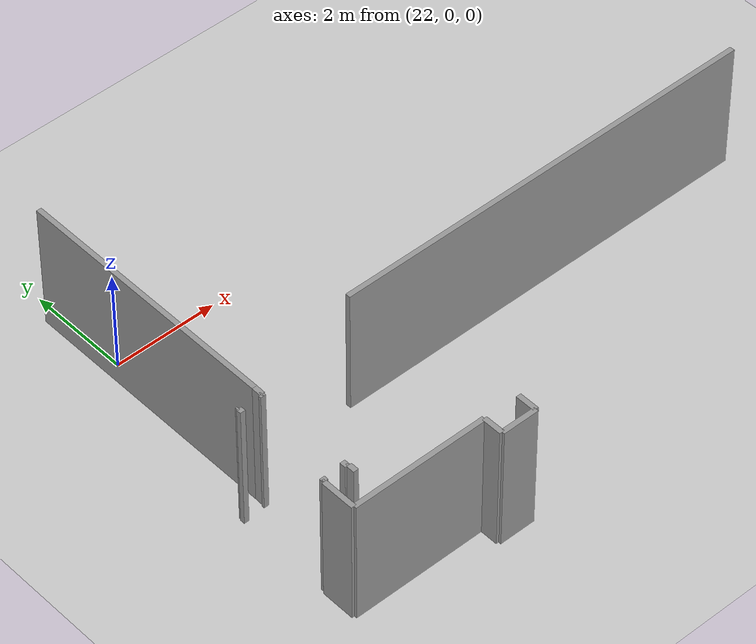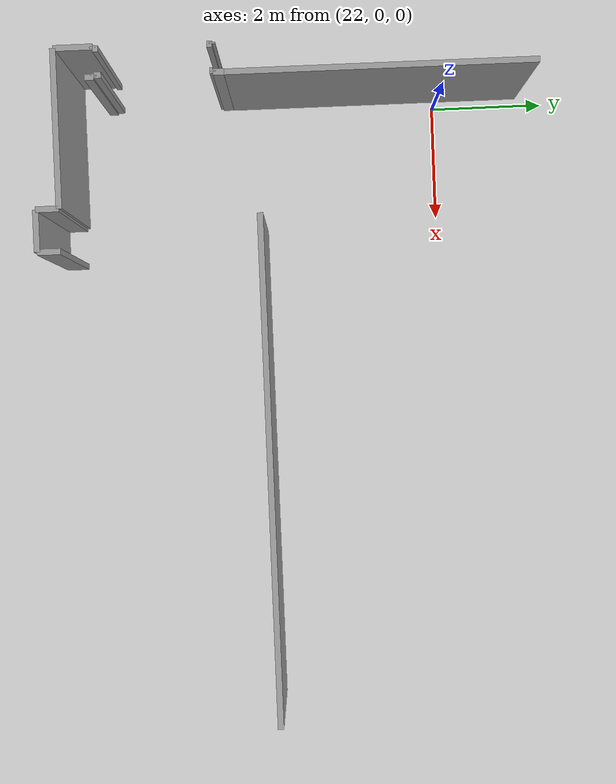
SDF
<sdf version="1.6">
 <world name="default">
  <model name="ground_plane">
   <static>1</static>
   <link name="link">
    <collision name="collision">
     <geometry><plane><normal>0 0 1</normal><size>100 100</size></plane></geometry>
     <surface><friction><ode><mu>100</mu><mu2>50</mu2></ode></friction></surface>
    </collision>
    <visual name="visual">
     <cast_shadows>0</cast_shadows>
     <geometry><plane><normal>0 0 1</normal><size>100 100</size></plane></geometry>
     <material>
      <script><uri>file://media/materials/scripts/gazebo.material</uri><name>Gazebo/Grey</name></script>
     </material>
    </visual>
   </link>
  </model>
  <model name="0510032258_A_40_1_105">
   <static>1</static>
   <link name="Wall_159">
    <collision name="Wall_159_Collision">
     <geometry><box><size>0.031888403293 0.1 2.5</size></box></geometry>
     <pose>0.0159442016465 0 1.25 0 0 0</pose>
    </collision>
    <visual name="Wall_159_Visual">
     <pose>0.0159442016465 0 1.25 0 0 0</pose>
     <geometry><box><size>0.031888403293 0.1 2.5</size></box></geometry>
     <material>
      <script><uri>file://media/materials/scripts/gazebo.material</uri><name>Gazebo/Grey</name></script>
      <ambient>1 1 1 1</ambient>
     </material>
    </visual>
    <pose>69.2119371887 -16.9769539587 0 0 0 0.0</pose>
   </link>
   <link name="Wall_160">
    <collision name="Wall_160_Collision">
     <geometry><box><size>0.091091574347 0.1 2.5</size></box></geometry>
     <pose>0.0455457871735 0 1.25 0 0 0</pose>
    </collision>
    <visual name="Wall_160_Visual">
     <pose>0.0455457871735 0 1.25 0 0 0</pose>
     <geometry><box><size>0.091091574347 0.1 2.5</size></box></geometry>
     <material>
      <script><uri>file://media/materials/scripts/gazebo.material</uri><name>Gazebo/Grey</name></script>
      <ambient>1 1 1 1</ambient>
     </material>
    </visual>
    <pose>69.243825592 -16.9769539587 0 0 0 -1.57079632679</pose>
   </link>
   <link name="Wall_161">
    <collision name="Wall_161_Collision">
     <geometry><box><size>0.0855015753633 0.1 2.5</size></box></geometry>
     <pose>0.0427507876817 0 1.25 0 0 0</pose>
    </collision>
    <visual name="Wall_161_Visual">
     <pose>0.0427507876817 0 1.25 0 0 0</pose>
     <geometry><box><size>0.0855015753633 0.1 2.5</size></box></geometry>
     <material>
      <script><uri>file://media/materials/scripts/gazebo.material</uri><name>Gazebo/Grey</name></script>
      <ambient>1 1 1 1</ambient>
     </material>
    </visual>
    <pose>69.243825592 -18.8539231629 0 0 0 -1.57079632679</pose>
   </link>
   <link name="Wall_162">
    <collision name="Wall_162_Collision">
     <geometry><box><size>0.031888403293 0.1 2.5</size></box></geometry>
     <pose>0.0159442016465 0 1.25 0 0 0</pose>
    </collision>
    <visual name="Wall_162_Visual">
     <pose>0.0159442016465 0 1.25 0 0 0</pose>
     <geometry><box><size>0.031888403293 0.1 2.5</size></box></geometry>
     <material>
      <script><uri>file://media/materials/scripts/gazebo.material</uri><name>Gazebo/Grey</name></script>
      <ambient>1 1 1 1</ambient>
     </material>
    </visual>
    <pose>69.243825592 -18.9394247383 0 0 0 3.14159265359</pose>
   </link>
   <link name="Wall_163">
    <collision name="Wall_163_Collision">
     <geometry><box><size>0.655427380831 0.1 2.5</size></box></geometry>
     <pose>0.327713690416 0 1.25 0 0 0</pose>
    </collision>
    <visual name="Wall_163_Visual">
     <pose>0.327713690416 0 1.25 0 0 0</pose>
     <geometry><box><size>0.655427380831 0.1 2.5</size></box></geometry>
     <material>
      <script><uri>file://media/materials/scripts/gazebo.material</uri><name>Gazebo/Grey</name></script>
      <ambient>1 1 1 1</ambient>
     </material>
    </visual>
    <pose>69.2119371887 -18.9394247383 0 0 0 -1.57079632679</pose>
   </link>
   <link name="Wall_164">
    <collision name="Wall_164_Collision">
     <geometry><box><size>2.62945929464 0.1 2.5</size></box></geometry>
     <pose>1.31472964732 0 1.25 0 0 0</pose>
    </collision>
    <visual name="Wall_164_Visual">
     <pose>1.31472964732 0 1.25 0 0 0</pose>
     <geometry><box><size>2.62945929464 0.1 2.5</size></box></geometry>
     <material>
      <script><uri>file://media/materials/scripts/gazebo.material</uri><name>Gazebo/Grey</name></script>
      <ambient>1 1 1 1</ambient>
     </material>
    </visual>
    <pose>69.2119371887 -19.5948521191 0 0 0 0.0</pose>
   </link>
   <link name="Wall_165">
    <collision name="Wall_165_Collision">
     <geometry><box><size>0.386091066165 0.1 2.5</size></box></geometry>
     <pose>0.193045533083 0 1.25 0 0 0</pose>
    </collision>
    <visual name="Wall_165_Visual">
     <pose>0.193045533083 0 1.25 0 0 0</pose>
     <geometry><box><size>0.386091066165 0.1 2.5</size></box></geometry>
     <material>
      <script><uri>file://media/materials/scripts/gazebo.material</uri><name>Gazebo/Grey</name></script>
      <ambient>1 1 1 1</ambient>
     </material>
    </visual>
    <pose>71.8413964834 -19.5948521191 0 0 0 -1.57079632679</pose>
   </link>
   <link name="Wall_166">
    <collision name="Wall_166_Collision">
     <geometry><box><size>0.701798963309 0.1 2.5</size></box></geometry>
     <pose>0.350899481655 0 1.25 0 0 0</pose>
    </collision>
    <visual name="Wall_166_Visual">
     <pose>0.350899481655 0 1.25 0 0 0</pose>
     <geometry><box><size>0.701798963309 0.1 2.5</size></box></geometry>
     <material>
      <script><uri>file://media/materials/scripts/gazebo.material</uri><name>Gazebo/Grey</name></script>
      <ambient>1 1 1 1</ambient>
     </material>
    </visual>
    <pose>71.8413964834 -19.9809431853 0 0 0 0.0</pose>
   </link>
   <link name="Wall_167">
    <collision name="Wall_167_Collision">
     <geometry><box><size>0.385074702714 0.1 2.5</size></box></geometry>
     <pose>0.192537351357 0 1.25 0 0 0</pose>
    </collision>
    <visual name="Wall_167_Visual">
     <pose>0.192537351357 0 1.25 0 0 0</pose>
     <geometry><box><size>0.385074702714 0.1 2.5</size></box></geometry>
     <material>
      <script><uri>file://media/materials/scripts/gazebo.material</uri><name>Gazebo/Grey</name></script>
      <ambient>1 1 1 1</ambient>
     </material>
    </visual>
    <pose>72.5431954467 -19.9809431853 0 0 0 1.57079632679</pose>
   </link>
   <link name="Wall_171">
    <collision name="Wall_171_Collision">
     <geometry><box><size>5.18840837483 0.1 2.5</size></box></geometry>
     <pose>2.59420418742 0 1.25 0 0 0</pose>
    </collision>
    <visual name="Wall_171_Visual">
     <pose>2.59420418742 0 1.25 0 0 0</pose>
     <geometry><box><size>5.18840837483 0.1 2.5</size></box></geometry>
     <material>
      <script><uri>file://media/materials/scripts/gazebo.material</uri><name>Gazebo/Grey</name></script>
      <ambient>1 1 1 1</ambient>
     </material>
    </visual>
    <pose>69.7089389166 -16.7999796727 0 0 0 1.57079632679</pose>
   </link>
   <link name="Wall_177">
    <collision name="Wall_177_Collision">
     <geometry><box><size>8.48333163939 0.1 2.5</size></box></geometry>
     <pose>4.2416658197 0 1.25 0 0 0</pose>
    </collision>
    <visual name="Wall_177_Visual">
     <pose>4.2416658197 0 1.25 0 0 0</pose>
     <geometry><box><size>8.48333163939 0.1 2.5</size></box></geometry>
     <material>
      <script><uri>file://media/materials/scripts/gazebo.material</uri><name>Gazebo/Grey</name></script>
      <ambient>1 1 1 1</ambient>
     </material>
    </visual>
    <pose>72.0395873564 -16.3038672629 0 0 0 0.0</pose>
   </link>
   <link name="Wall_183">
    <collision name="Wall_183_Collision">
     <geometry><box><size>0.154233153776 0.1 2.5</size></box></geometry>
     <pose>0.0771165768879 0 1.25 0 0 0</pose>
    </collision>
    <visual name="Wall_183_Visual">
     <pose>0.0771165768879 0 1.25 0 0 0</pose>
     <geometry><box><size>0.154233153776 0.1 2.5</size></box></geometry>
     <material>
      <script><uri>file://media/materials/scripts/gazebo.material</uri><name>Gazebo/Grey</name></script>
      <ambient>1 1 1 1</ambient>
     </material>
    </visual>
    <pose>69.7098282346 -19.0907358471 0 0 0 1.57079632679</pose>
   </link>
   <link name="Wall_184">
    <collision name="Wall_184_Collision">
     <geometry><box><size>0.029601585527 0.1 2.5</size></box></geometry>
     <pose>0.0148007927635 0 1.25 0 0 0</pose>
    </collision>
    <visual name="Wall_184_Visual">
     <pose>0.0148007927635 0 1.25 0 0 0</pose>
     <geometry><box><size>0.029601585527 0.1 2.5</size></box></geometry>
     <material>
      <script><uri>file://media/materials/scripts/gazebo.material</uri><name>Gazebo/Grey</name></script>
      <ambient>1 1 1 1</ambient>
     </material>
    </visual>
    <pose>69.7098282346 -18.9365026934 0 0 0 3.14159265359</pose>
   </link>
   <link name="Wall_185">
    <collision name="Wall_185_Collision">
     <geometry><box><size>0.119295660128 0.1 2.5</size></box></geometry>
     <pose>0.059647830064 0 1.25 0 0 0</pose>
    </collision>
    <visual name="Wall_185_Visual">
     <pose>0.059647830064 0 1.25 0 0 0</pose>
     <geometry><box><size>0.119295660128 0.1 2.5</size></box></geometry>
     <material>
      <script><uri>file://media/materials/scripts/gazebo.material</uri><name>Gazebo/Grey</name></script>
      <ambient>1 1 1 1</ambient>
     </material>
    </visual>
    <pose>69.680226649 -18.9365026934 0 0 0 1.57079632679</pose>
   </link>
   <link name="Wall_186">
    <collision name="Wall_186_Collision">
     <geometry><box><size>0.0505640817156 0.1 2.5</size></box></geometry>
     <pose>0.0252820408578 0 1.25 0 0 0</pose>
    </collision>
    <visual name="Wall_186_Visual">
     <pose>0.0252820408578 0 1.25 0 0 0</pose>
     <geometry><box><size>0.0505640817156 0.1 2.5</size></box></geometry>
     <material>
      <script><uri>file://media/materials/scripts/gazebo.material</uri><name>Gazebo/Grey</name></script>
      <ambient>1 1 1 1</ambient>
     </material>
    </visual>
    <pose>69.680226649 -17.0333621303 0 0 0 1.57079632679</pose>
   </link>
   <link name="Wall_187">
    <collision name="Wall_187_Collision">
     <geometry><box><size>0.0228681776603 0.1 2.5</size></box></geometry>
     <pose>0.0114340888302 0 1.25 0 0 0</pose>
    </collision>
    <visual name="Wall_187_Visual">
     <pose>0.0114340888302 0 1.25 0 0 0</pose>
     <geometry><box><size>0.0228681776603 0.1 2.5</size></box></geometry>
     <material>
      <script><uri>file://media/materials/scripts/gazebo.material</uri><name>Gazebo/Grey</name></script>
      <ambient>1 1 1 1</ambient>
     </material>
    </visual>
    <pose>69.680226649 -16.9827980486 0 0 0 0.0</pose>
   </link>
   <link name="Wall_188">
    <collision name="Wall_188_Collision">
     <geometry><box><size>0.182911759969 0.1 2.5</size></box></geometry>
     <pose>0.0914558799846 0 1.25 0 0 0</pose>
    </collision>
    <visual name="Wall_188_Visual">
     <pose>0.0914558799846 0 1.25 0 0 0</pose>
     <geometry><box><size>0.182911759969 0.1 2.5</size></box></geometry>
     <material>
      <script><uri>file://media/materials/scripts/gazebo.material</uri><name>Gazebo/Grey</name></script>
      <ambient>1 1 1 1</ambient>
     </material>
    </visual>
    <pose>69.7030948267 -16.9827980486 0 0 0 1.53884056517</pose>
   </link>
   <pose>-47.9 13.1512145543 0 0 0 0</pose>
  </model>
 </world>
</sdf>
